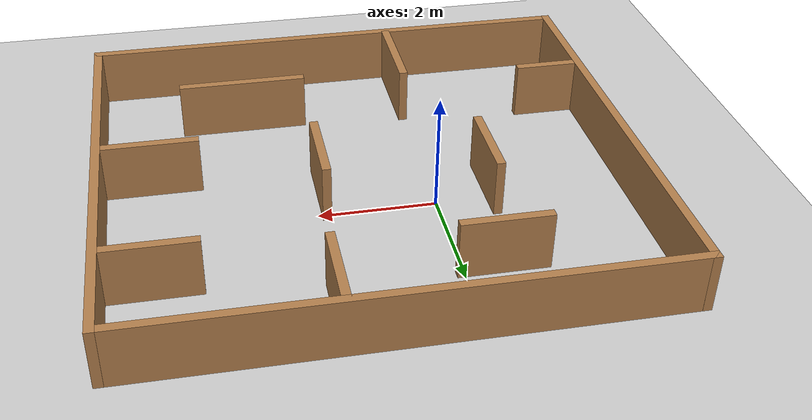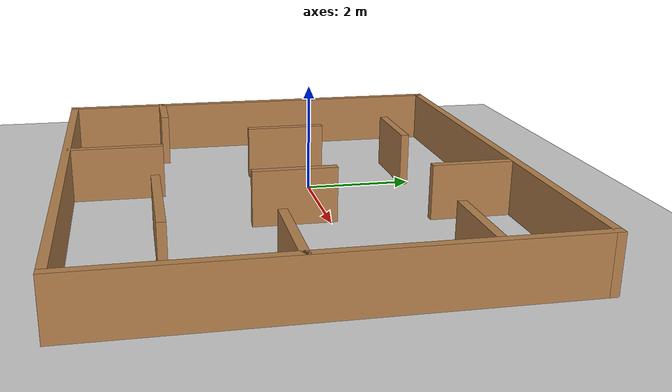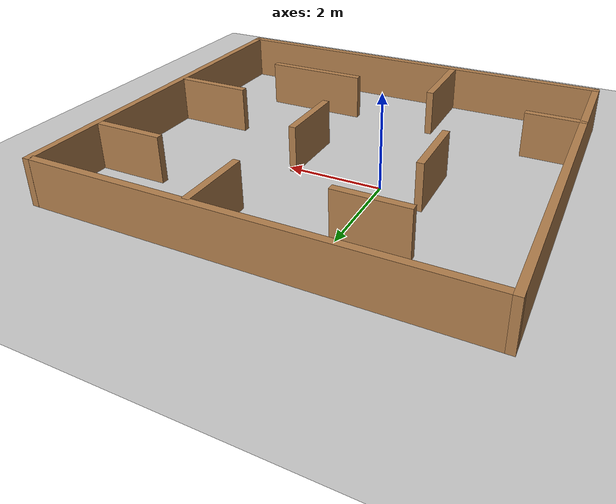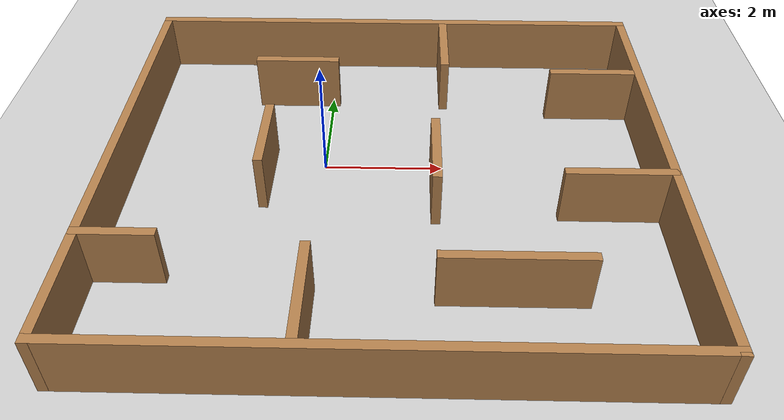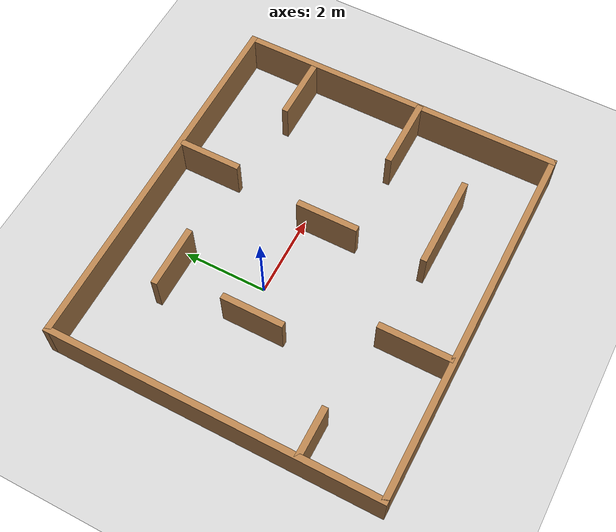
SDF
<sdf version="1.7">
 <world name="default">
  <light name="sun" type="directional">
   <pose>0 0 10 0 -0 0</pose>
   <diffuse>0.8 0.8 0.8 1</diffuse>
   <specular>0.2 0.2 0.2 1</specular>
   <attenuation>
    <range>1000</range>
    <constant>0.9</constant>
    <linear>0.01</linear>
    <quadratic>0.001</quadratic>
   </attenuation>
   <direction>-0.5 0.1 -0.9</direction>
   <spot><inner_angle>0</inner_angle><outer_angle>0</outer_angle><falloff>0</falloff></spot>
  </light>
  <model name="ground_plane">
   <static>1</static>
   <link name="link">
    <collision name="collision">
     <geometry><plane><normal>0 0 1</normal><size>100 100</size></plane></geometry>
     <surface>
      <contact><collide_bitmask>65535</collide_bitmask></contact>
      <friction><ode><mu>100</mu><mu2>50</mu2></ode></friction>
     </surface>
    </collision>
    <visual name="visual">
     <cast_shadows>0</cast_shadows>
     <geometry><plane><normal>0 0 1</normal><size>100 100</size></plane></geometry>
     <material>
      <script><uri>file://media/materials/scripts/gazebo.material</uri><name>Gazebo/Grey</name></script>
     </material>
    </visual>
   </link>
  </model>
  <gravity>0 0 -9.8</gravity>
  <magnetic_field>6e-06 2.3e-05 -4.2e-05</magnetic_field>
  <atmosphere type="adiabatic"/>
  <physics type="ode">
   <max_step_size>0.001</max_step_size>
   <real_time_factor>1</real_time_factor>
   <real_time_update_rate>1000</real_time_update_rate>
  </physics>
  <scene><ambient>0.4 0.4 0.4 1</ambient><background>0.7 0.7 0.7 1</background><shadows>1</shadows></scene>
  <audio><device>default</device></audio>
  <spherical_coordinates>
   <surface_model>EARTH_WGS84</surface_model>
   <latitude_deg>0</latitude_deg>
   <longitude_deg>0</longitude_deg>
   <elevation>0</elevation>
   <heading_deg>0</heading_deg>
  </spherical_coordinates>
  <model name="maze1">
   <pose>1.1025 -0.625 0 0 -0 0</pose>
   <link name="Wall_0">
    <collision name="Wall_0_Collision">
     <geometry><box><size>8.985 0.15 1</size></box></geometry>
     <pose>0 0 0.5 0 -0 0</pose>
    </collision>
    <visual name="Wall_0_Visual">
     <pose>0 0 0.5 0 -0 0</pose>
     <geometry><box><size>8.985 0.15 1</size></box></geometry>
     <material>
      <script><uri>file://media/materials/scripts/gazebo.material</uri><name>Gazebo/Wood</name></script>
      <ambient>1 1 1 1</ambient>
     </material>
     <meta><layer>0</layer></meta>
    </visual>
    <pose>0 -3.915 0 0 -0 0</pose>
   </link>
   <link name="Wall_10">
    <collision name="Wall_10_Collision">
     <geometry><box><size>1.75 0.15 1</size></box></geometry>
     <pose>0 0 0.5 0 -0 0</pose>
    </collision>
    <visual name="Wall_10_Visual">
     <pose>0 0 0.5 0 -0 0</pose>
     <geometry><box><size>1.75 0.15 1</size></box></geometry>
     <material>
      <script><uri>file://media/materials/scripts/gazebo.material</uri><name>Gazebo/Wood</name></script>
      <ambient>1 1 1 1</ambient>
     </material>
     <meta><layer>0</layer></meta>
    </visual>
    <pose>-1.1165 -3.031 0 0 -0 -1.5708</pose>
   </link>
   <link name="Wall_13">
    <collision name="Wall_13_Collision">
     <geometry><box><size>1.5 0.15 1</size></box></geometry>
     <pose>0 0 0.5 0 -0 0</pose>
    </collision>
    <visual name="Wall_13_Visual">
     <pose>0 0 0.5 0 -0 0</pose>
     <geometry><box><size>1.5 0.15 1</size></box></geometry>
     <material>
      <script><uri>file://media/materials/scripts/gazebo.material</uri><name>Gazebo/Wood</name></script>
      <ambient>1 1 1 1</ambient>
     </material>
     <meta><layer>0</layer></meta>
    </visual>
    <pose>3.5985 2.20332 0 0 -0 3.14159</pose>
   </link>
   <link name="Wall_16">
    <collision name="Wall_16_Collision">
     <geometry><box><size>1.5 0.15 1</size></box></geometry>
     <pose>0 0 0.5 0 -0 0</pose>
    </collision>
    <visual name="Wall_16_Visual">
     <pose>0 0 0.5 0 -0 0</pose>
     <geometry><box><size>1.5 0.15 1</size></box></geometry>
     <material>
      <script><uri>file://media/materials/scripts/gazebo.material</uri><name>Gazebo/Wood</name></script>
      <ambient>1 1 1 1</ambient>
     </material>
     <meta><layer>0</layer></meta>
    </visual>
    <pose>0.965273 3.13332 0 0 -0 -1.5708</pose>
   </link>
   <link name="Wall_19">
    <collision name="Wall_19_Collision">
     <geometry><box><size>1.5 0.15 1</size></box></geometry>
     <pose>0 0 0.5 0 -0 0</pose>
    </collision>
    <visual name="Wall_19_Visual">
     <pose>0 0 0.5 0 -0 0</pose>
     <geometry><box><size>1.5 0.15 1</size></box></geometry>
     <material>
      <script><uri>file://media/materials/scripts/gazebo.material</uri><name>Gazebo/Wood</name></script>
      <ambient>1 1 1 1</ambient>
     </material>
     <meta><layer>0</layer></meta>
    </visual>
    <pose>-1.72346 2.51589 0 0 -0 0</pose>
   </link>
   <link name="Wall_21">
    <collision name="Wall_21_Collision">
     <geometry><box><size>1.5 0.15 1</size></box></geometry>
     <pose>0 0 0.5 0 -0 0</pose>
    </collision>
    <visual name="Wall_21_Visual">
     <pose>0 0 0.5 0 -0 0</pose>
     <geometry><box><size>1.5 0.15 1</size></box></geometry>
     <material>
      <script><uri>file://media/materials/scripts/gazebo.material</uri><name>Gazebo/Wood</name></script>
      <ambient>1 1 1 1</ambient>
     </material>
     <meta><layer>0</layer></meta>
    </visual>
    <pose>-2.04527 0.332136 0 0 -0 -1.5708</pose>
   </link>
   <link name="Wall_23">
    <collision name="Wall_23_Collision">
     <geometry><box><size>2.25 0.15 1</size></box></geometry>
     <pose>0 0 0.5 0 -0 0</pose>
    </collision>
    <visual name="Wall_23_Visual">
     <pose>0 0 0.5 0 -0 0</pose>
     <geometry><box><size>2.25 0.15 1</size></box></geometry>
     <material>
      <script><uri>file://media/materials/scripts/gazebo.material</uri><name>Gazebo/Wood</name></script>
      <ambient>1 1 1 1</ambient>
     </material>
     <meta><layer>0</layer></meta>
    </visual>
    <pose>1.83539 -2.367 0 0 -0 0</pose>
   </link>
   <link name="Wall_25">
    <collision name="Wall_25_Collision">
     <geometry><box><size>1.5 0.15 1</size></box></geometry>
     <pose>0 0 0.5 0 -0 0</pose>
    </collision>
    <visual name="Wall_25_Visual">
     <pose>0 0 0.5 0 -0 0</pose>
     <geometry><box><size>1.5 0.15 1</size></box></geometry>
     <material>
      <script><uri>file://media/materials/scripts/gazebo.material</uri><name>Gazebo/Wood</name></script>
      <ambient>1 1 1 1</ambient>
     </material>
     <meta><layer>0</layer></meta>
    </visual>
    <pose>0.760614 -0.003454 0 0 -0 -1.5708</pose>
   </link>
   <link name="Wall_27">
    <collision name="Wall_27_Collision">
     <geometry><box><size>1.75 0.15 1</size></box></geometry>
     <pose>0 0 0.5 0 -0 0</pose>
    </collision>
    <visual name="Wall_27_Visual">
     <pose>0 0 0.5 0 -0 0</pose>
     <geometry><box><size>1.75 0.15 1</size></box></geometry>
     <material>
      <script><uri>file://media/materials/scripts/gazebo.material</uri><name>Gazebo/Wood</name></script>
      <ambient>1 1 1 1</ambient>
     </material>
     <meta><layer>0</layer></meta>
    </visual>
    <pose>3.5945 -0.560817 0 0 -0 0</pose>
   </link>
   <link name="Wall_4">
    <collision name="Wall_4_Collision">
     <geometry><box><size>7.98082 0.15 1</size></box></geometry>
     <pose>0 0 0.5 0 -0 0</pose>
    </collision>
    <visual name="Wall_4_Visual">
     <pose>0 0 0.5 0 -0 0</pose>
     <geometry><box><size>7.98082 0.15 1</size></box></geometry>
     <material>
      <script><uri>file://media/materials/scripts/gazebo.material</uri><name>Gazebo/Wood</name></script>
      <ambient>1 1 1 1</ambient>
     </material>
     <meta><layer>0</layer></meta>
    </visual>
    <pose>4.4175 0 0 0 -0 1.5708</pose>
   </link>
   <link name="Wall_5">
    <collision name="Wall_5_Collision">
     <geometry><box><size>8.985 0.15 1</size></box></geometry>
     <pose>0 0 0.5 0 -0 0</pose>
    </collision>
    <visual name="Wall_5_Visual">
     <pose>0 0 0.5 0 -0 0</pose>
     <geometry><box><size>8.985 0.15 1</size></box></geometry>
     <material>
      <script><uri>file://media/materials/scripts/gazebo.material</uri><name>Gazebo/Wood</name></script>
      <ambient>1 1 1 1</ambient>
     </material>
     <meta><layer>0</layer></meta>
    </visual>
    <pose>0 3.915 0 0 -0 3.14159</pose>
   </link>
   <link name="Wall_6">
    <collision name="Wall_6_Collision">
     <geometry><box><size>7.98082 0.15 1</size></box></geometry>
     <pose>0 0 0.5 0 -0 0</pose>
    </collision>
    <visual name="Wall_6_Visual">
     <pose>0 0 0.5 0 -0 0</pose>
     <geometry><box><size>7.98082 0.15 1</size></box></geometry>
     <material>
      <script><uri>file://media/materials/scripts/gazebo.material</uri><name>Gazebo/Wood</name></script>
      <ambient>1 1 1 1</ambient>
     </material>
     <meta><layer>0</layer></meta>
    </visual>
    <pose>-4.4175 0 0 0 -0 -1.5708</pose>
   </link>
   <link name="Wall_8">
    <collision name="Wall_8_Collision">
     <geometry><box><size>1.25 0.15 1</size></box></geometry>
     <pose>0 0 0.5 0 -0 0</pose>
    </collision>
    <visual name="Wall_8_Visual">
     <pose>0 0 0.5 0 -0 0</pose>
     <geometry><box><size>1.25 0.15 1</size></box></geometry>
     <material>
      <script><uri>file://media/materials/scripts/gazebo.material</uri><name>Gazebo/Wood</name></script>
      <ambient>1 1 1 1</ambient>
     </material>
     <meta><layer>0</layer></meta>
    </visual>
    <pose>-3.8665 -2.021 0 0 -0 0</pose>
   </link>
   <static>1</static>
  </model>
 </world>
</sdf>
